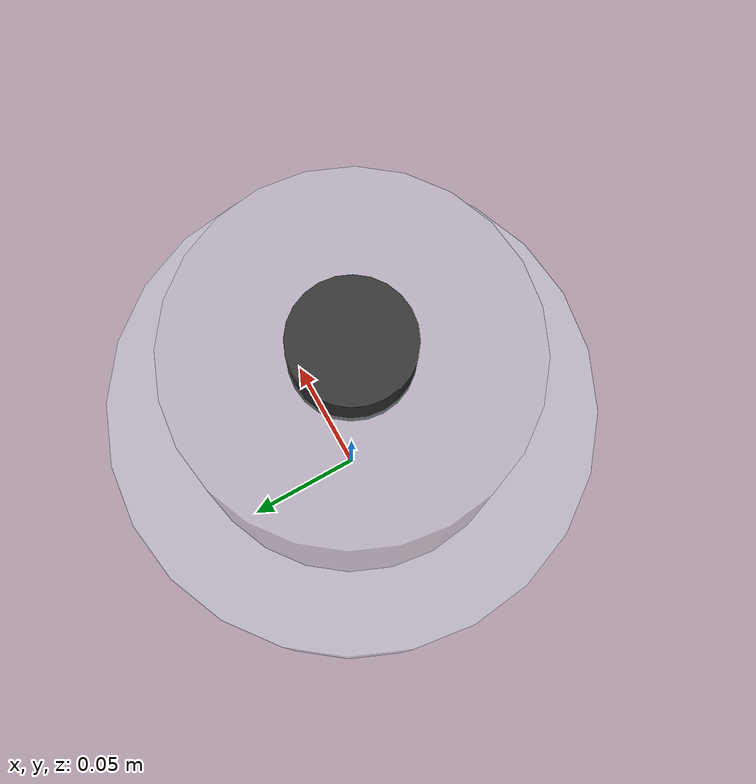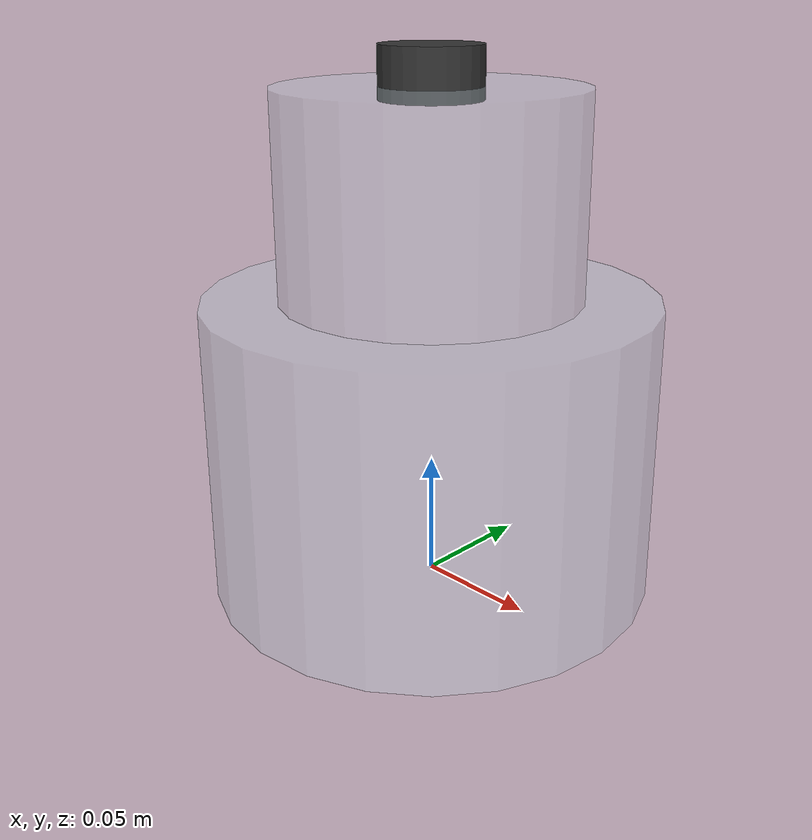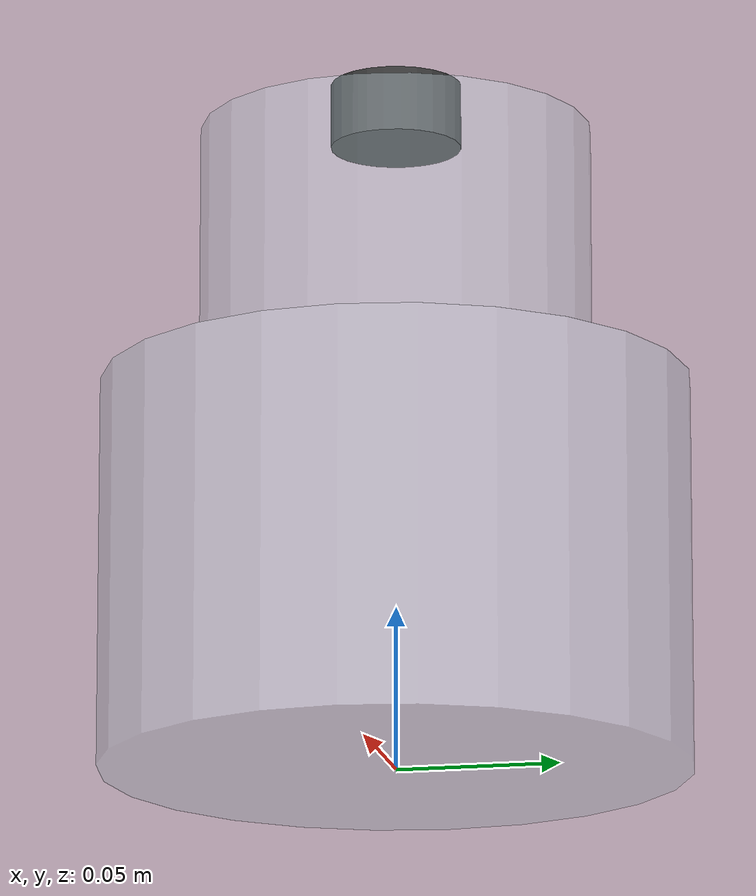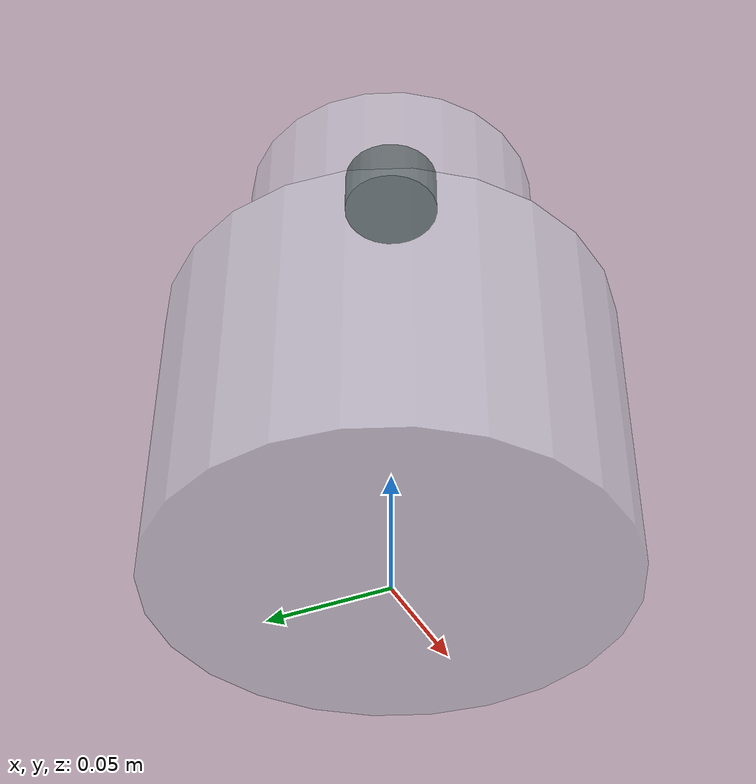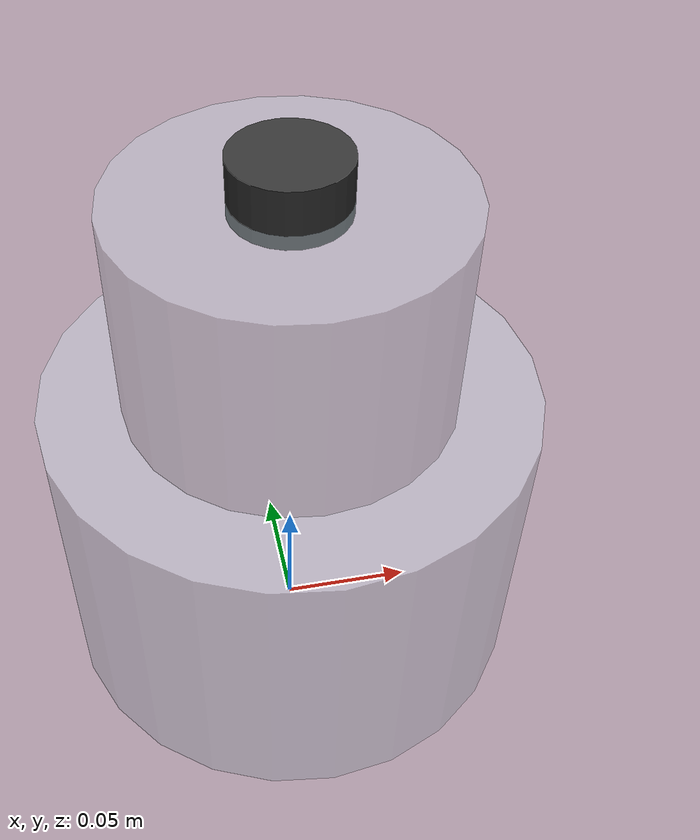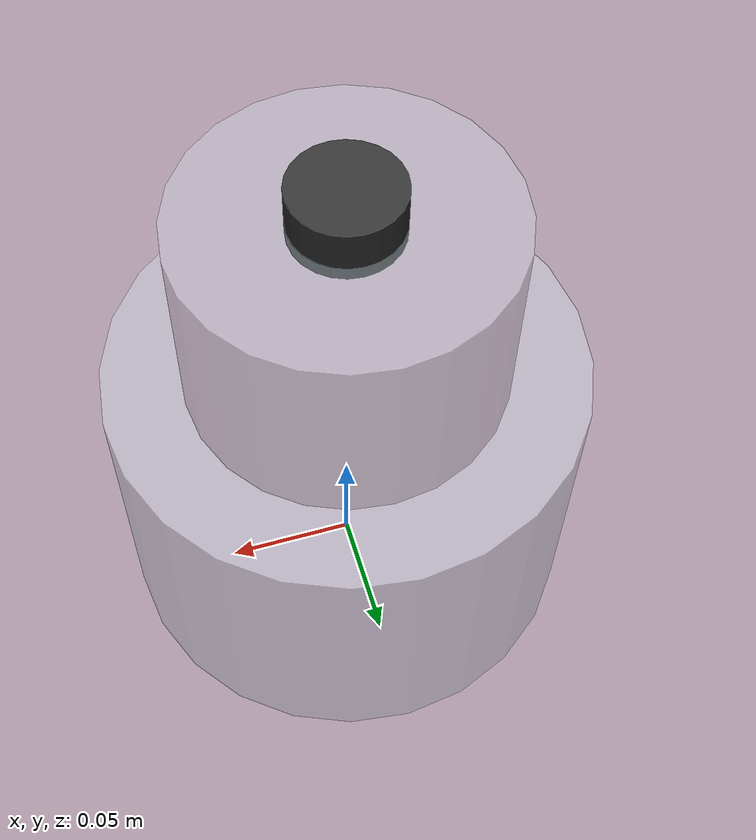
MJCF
<?xml version="1.0" encoding="utf-8"?>
<mujoco model="desiccator">
  <compiler angle="radian" autolimits="true"/>
  <default>
    <default class="body"><geom contype="1" conaffinity="1"/></default>
  </default>
  <worldbody>
    <body name="base">
      <geom type="cylinder" size="0.09 0.06" pos="0 0 0.06" rgba="0.8 0.88 0.92 0.35" class="body"/>
      <body name="lid" pos="0 0 0.15">
        <joint name="lid_joint" type="slide" axis="0 0 1" range="0 0.10" damping="1.0" frictionloss="0.5"/>
  <geom type="cylinder" size="0.06 0.05" pos="0 0 0" rgba="0.8 0.88 0.92 0.3" class="body"/>
  <geom type="cylinder" size="0.02 0.01" pos="0 0 0.055" rgba="0.2 0.2 0.2 1" class="body"/>
      </body>
    </body>
  </worldbody>
</mujoco>
